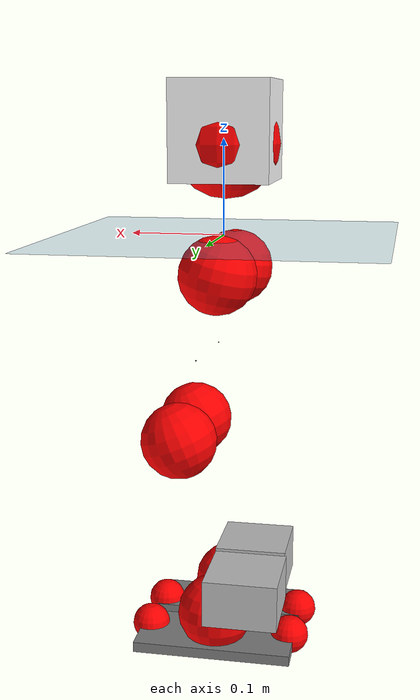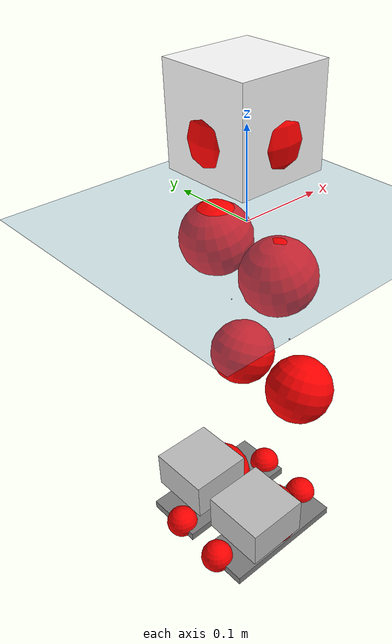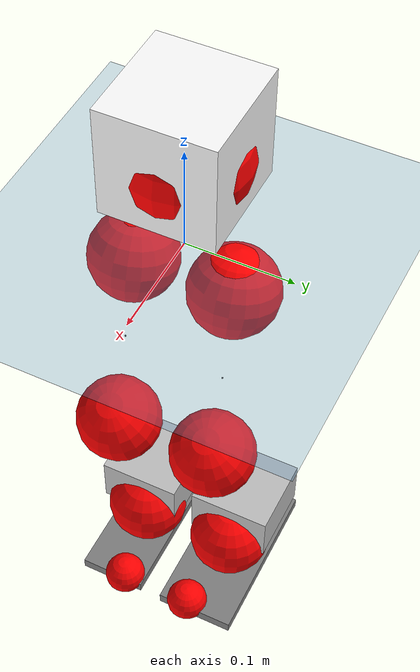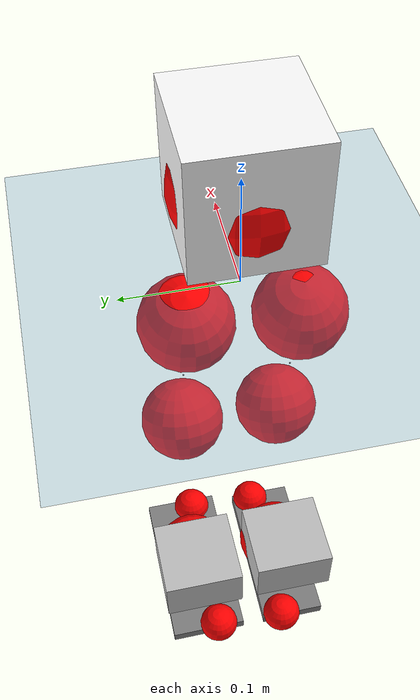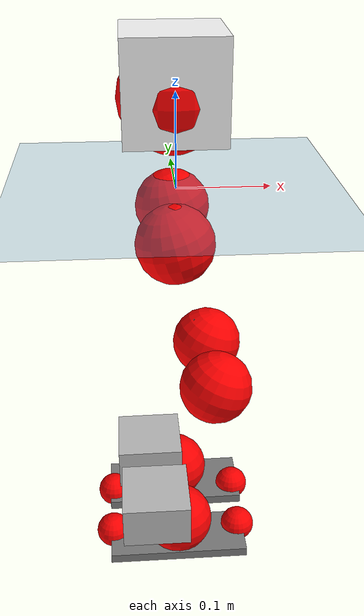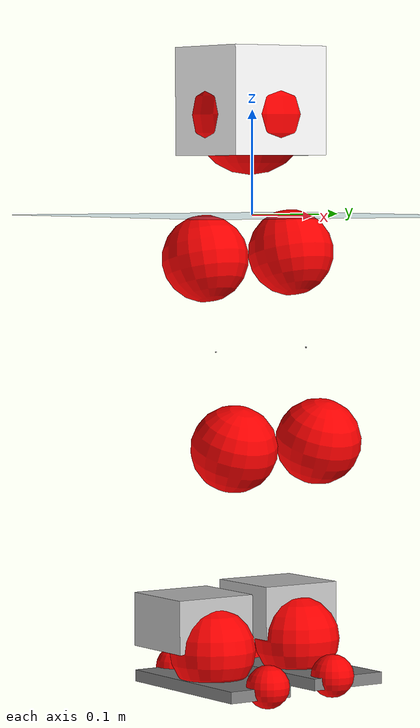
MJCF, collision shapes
<mujoco model="pi_12dof_release_v1">
  <compiler angle="radian" assetdir="assets" balanceinertia="true" inertiafromgeom="false"/>

  <option timestep="0.005" density="1.2" viscosity="2e-05"/>

  <size nkey="1"/>

  <visual>
    <quality shadowsize="8192"/>
    <map shadowclip="0.5"/>
  </visual>

  <default>
    <default class="/">
      <joint armature="0.01" damping="0.01" frictionloss="0.01"/>
      <geom contype="0" conaffinity="0" group="1" solref="-1000 -80"/>
      <site size="0.01 0.005 0.005" group="5"/>
      <general forcelimited="true" biastype="affine" gainprm="20" biasprm="0 -20 -0.5"/>
      <default class="foot">
        <geom size="0.0845 0.036 0.005" type="box" condim="6" group="4" priority="1" friction="0.9 0.2 0.2" solimp="0.015 1 0.005"/>
      </default>
      <default class="reward_collision_sphere">
        <geom group="5" rgba="1 0 0 1"/>
      </default>
    </default>
  </default>

  <asset>
    <texture type="skybox" colorspace="auto" name="//unnamed_texture_0" builtin="gradient" rgb1="0.95 0.95 0.95" rgb2="0.95 0.95 0.95" width="100" height="600"/>
    <texture type="2d" colorspace="auto" name="texplane" builtin="checker" rgb1="0.345 0.575 0.748" rgb2="0.345 0.575 0.748" markrgb="1 1 1" width="512" height="512"/>
    <material name="MatPlane" class="/" texture="texplane" texuniform="true" texrepeat="2 2" specular="0.9"/>
    <mesh name="baselink_1" class="/" file="baselink_1.STL"/>
    <mesh name="r_hip_pitch_link" class="/" file="r_hip_pitch_link.STL"/>
    <mesh name="r_hip_roll_link" class="/" file="r_hip_roll_link.STL"/>
    <mesh name="r_thigh_link" class="/" file="r_thigh_link.STL"/>
    <mesh name="r_calf_link" class="/" file="r_calf_link.STL"/>
    <mesh name="r_ankle_pitch_link" class="/" file="r_ankle_pitch_link.STL"/>
    <mesh name="r_ankle_roll_link" class="/" file="r_ankle_roll_link.STL"/>
    <mesh name="l_hip_pitch_link" class="/" file="l_hip_pitch_link.STL"/>
    <mesh name="l_hip_roll_link" class="/" file="l_hip_roll_link.STL"/>
    <mesh name="l_thigh_link" class="/" file="l_thigh_link.STL"/>
    <mesh name="l_calf_link" class="/" file="l_calf_link.STL"/>
    <mesh name="l_ankle_pitch_link" class="/" file="l_ankle_pitch_link.STL"/>
    <mesh name="l_ankle_roll_link" class="/" file="l_ankle_roll_link.STL"/>
  </asset>

  <worldbody>
    <geom name="floor" class="/" size="100 100 0.125" type="plane" group="0" material="MatPlane"/>
    <light name="toplight_shadow" class="/" pos="0 0 5" dir="0.0990148 0.0990148 -0.990148" type="directional" ambient="0.04 0.04 0.04" diffuse="0.55 0.55 0.55" specular="0.12 0.12 0.12"/>
    <light name="toplight_fill" class="/" pos="0 0 5" dir="0.0990148 0.0990148 -0.990148" type="directional" castshadow="false" ambient="0.04 0.04 0.04" diffuse="0.3 0.3 0.3" specular="0.08 0.08 0.08"/>
    <body name="trunk" pos="-0.00257062 -5.41583e-05 0.00260857" quat="0.999999 0.00065855 -0.000732836 0.000583391">
      <inertial pos="0.00672232 0.00115542 0.0510601" quat="0.697999 0.00172519 0.0176583 0.715879" mass="2.32686" diaginertia="0.0213863 0.000791067 0.0173582"/>
      <joint name="//unnamed_joint_0" type="free"/>
      <geom name="//unnamed_geom_1" class="/" type="mesh" density="0" rgba="1 1 1 1" mesh="baselink_1"/>
      <geom name="//unnamed_geom_2" class="/" size="0.0517451 0.0517451 0.0517451" pos="0 0 0.105773" type="box" rgba="1 1 1 1"/>
      <geom name="//unnamed_geom_3" class="reward_collision_sphere" size="0.0569196" pos="0 0 0.092551"/>
      <site name="imu" class="/" pos="-0.0108926 -0.000180972 0.0106624" size="0.010349"/>
      <camera name="track" class="/" pos="0 -1.22573 0" quat="0.707107 0.707107 0 0" mode="trackcom"/>
      <camera name="ego_camera" class="/" pos="0.0877259 0 0.237988" quat="-0.5 -0.5 0.5 0.5"/>
      <body name="r_hip_pitch_link" pos="0.000150855 -0.0135574 -0.0450579" quat="0.992211 8.91744e-05 -0.124572 0.000109204">
        <inertial pos="0.00147159 -0.034397 7.10767e-05" quat="-0.0176801 0.70561 -0.0299611 0.707746" mass="0.440429" diaginertia="0.000246381 8.9445e-06 0.000352843"/>
        <joint name="r_hip_pitch_joint" class="/" pos="0 0 0" axis="-0.0017139 -0.999998 0.000882557" range="-1.72776 1.30401" armature="0.0108846" damping="0.0138375" frictionloss="0.00910704"/>
        <geom name="//unnamed_geom_4" class="/" type="mesh" density="0" rgba="0.75294 0.75294 0.75294 1" mesh="r_hip_pitch_link"/>
        <geom name="//unnamed_geom_5" class="/" size="0.000517451 0.000517451 0.000517451" type="box" rgba="0.75294 0.75294 0.75294 1"/>
        <body name="r_hip_roll_link" pos="-0.00151291 -0.0373787 0.00188747" quat="1 0.000790802 -1.58621e-05 0.000370073">
          <inertial pos="-0.000384656 -0.000180807 -0.0793506" quat="0.705805 -0.0797642 -0.0828131 0.699013" mass="0.423536" diaginertia="0.00072107 2.48023e-05 0.000531138"/>
          <joint name="r_hip_roll_joint" class="/" pos="0 0 0" axis="-0.999999 -0.0015671 -4.00438e-05" range="-0.0910623 0.492486" armature="0.00979598" damping="0.0216721" frictionloss="0.00903178"/>
          <geom name="//unnamed_geom_6" class="/" type="mesh" density="0" rgba="0.75294 0.75294 0.75294 1" mesh="r_hip_roll_link"/>
          <geom name="//unnamed_geom_7" class="/" size="0.000517451 0.000517451 0.000517451" type="box" rgba="0.75294 0.75294 0.75294 1"/>
          <geom name="//unnamed_geom_8" class="reward_collision_sphere" size="0.041396"/>
          <body name="r_thigh_link" pos="-0.00274643 -0.00139107 -0.090091" quat="0.999999 9.06471e-05 0.000196284 -0.00125275">
            <inertial pos="-0.000112164 0.0038165 -0.0650942" quat="0.735051 0.678007 -0.00116726 -0.00228881" mass="0.120576" diaginertia="0.000269029 8.06726e-06 0.000234632"/>
            <joint name="r_thigh_joint" class="/" pos="0 0 0" axis="-0.00314286 -0.00318977 -0.99999" stiffness="0.00274186" range="-0.310848 0.534333" armature="0.00901342" damping="0" frictionloss="0.0113865"/>
            <geom name="//unnamed_geom_9" class="/" type="mesh" density="0" rgba="0.75294 0.75294 0.75294 1" mesh="r_thigh_link"/>
            <geom name="//unnamed_geom_10" class="/" size="0.000517451 0.000517451 0.000517451" type="box" rgba="0.75294 0.75294 0.75294 1"/>
            <body name="r_calf_link" pos="0.00260442 0.00335539 -0.093929" quat="0.947564 5.4033e-05 0.319566 -0.000217048">
              <inertial pos="-0.00159443 0.00339728 -0.0932644" quat="0.999842 -0.0173534 0.00371512 -0.00109921" mass="0.917817" diaginertia="0.00793018 0.000302061 0.000721481"/>
              <joint name="r_calf_joint" class="/" pos="0 0 0" axis="0.000366713 -0.999999 0.00113877" stiffness="0.0088403" range="-1.65497 0.696539" armature="0.00916279" damping="0" frictionloss="0.010644"/>
              <geom name="//unnamed_geom_11" class="/" type="mesh" density="0" rgba="0.75294 0.75294 0.75294 1" mesh="r_calf_link"/>
              <geom name="//unnamed_geom_12" class="/" size="0.000517451 0.000517451 0.000517451" type="box" rgba="0.75294 0.75294 0.75294 1"/>
              <geom name="//unnamed_geom_13" class="reward_collision_sphere" size="0.041396"/>
              <body name="r_ankle_pitch_link" pos="0.000862203 -0.000684023 -0.184266" quat="0.980059 0.000243841 -0.198706 -0.000343297">
                <inertial pos="0.00332113 -3.037e-05 -0.00178758" quat="0.00908555 0.708517 -0.000551299 0.705635" mass="0.189148" diaginertia="0.00064566 1.88273e-05 0.000457695"/>
                <joint name="r_ankle_pitch_joint" class="/" pos="0 0 0" axis="0.00221363 -0.999993 -0.00309285" range="-1.32541 0.519637" armature="0.0109737" damping="0.0113351" frictionloss="0.00986068"/>
                <geom name="//unnamed_geom_14" class="/" type="mesh" density="0" rgba="0.75294 0.75294 0.75294 1" mesh="r_ankle_pitch_link"/>
                <geom name="//unnamed_geom_15" class="/" size="0.0403611 0.041396 0.0258725" type="box" rgba="0.75294 0.75294 0.75294 1"/>
                <body name="r_ankle_roll_link" pos="0.0866715 0.00342723 0.00012383" quat="1 -0.000455017 -0.000572732 0.000172726">
                  <inertial pos="-0.0279178 0.00019692 -0.0179936" quat="0.569608 0.421311 0.437741 0.553558" mass="0.584253" diaginertia="0.00254676 8.64495e-05 0.00113303"/>
                  <joint name="r_ankle_roll_joint" class="/" pos="0 0 0" axis="-0.999956 -0.00936567 -0.000506763" range="-0.13249 0.132654" armature="0.00904778" damping="0.00177025" frictionloss="0.0116883"/>
                  <geom name="//unnamed_geom_16" class="/" type="mesh" density="0" rgba="0.75294 0.75294 0.75294 1" mesh="r_ankle_roll_link"/>
                  <geom name="//unnamed_geom_17" class="/" type="mesh" rgba="0.75294 0.75294 0.75294 1" mesh="r_ankle_roll_link"/>
                  <geom name="right_foot" class="foot" size="0.0836067 0.0336783 0.00559407" pos="-0.0596536 0 -0.0581749"/>
                  <geom name="//unnamed_geom_19" class="reward_collision_sphere" size="0.041396" pos="-0.0584839 0 -0.0264432"/>
                  <geom name="//unnamed_geom_20" class="reward_collision_sphere" size="0.020698" pos="0.0175452 0.0122573 -0.0528863"/>
                  <geom name="//unnamed_geom_21" class="reward_collision_sphere" size="0.020698" pos="-0.140361 0.0122573 -0.0528863"/>
                  <site name="right_foot" class="foot" pos="-0.0596536 0 -0.0581749" size="0.010349"/>
                </body>
              </body>
            </body>
          </body>
        </body>
      </body>
      <body name="l_hip_pitch_link" pos="-0.00170989 0.0138547 -0.0417422" quat="0.992186 -7.79788e-05 -0.124771 -6.27037e-05">
        <inertial pos="0.00142639 0.0338003 0.00254841" quat="-0.0401516 0.705865 0.0288663 0.706618" mass="0.418004" diaginertia="0.000258144 8.53843e-06 0.000385286"/>
        <joint name="l_hip_pitch_joint" class="/" pos="0 0 0" axis="0.00213014 0.999989 -0.00415299" range="-1.20077 1.74695" armature="0.0101953" damping="0.0167399" frictionloss="0.00989656"/>
        <geom name="//unnamed_geom_22" class="/" type="mesh" density="0" rgba="0.75294 0.75294 0.75294 1" mesh="l_hip_pitch_link"/>
        <geom name="//unnamed_geom_23" class="/" size="0.000517451 0.000517451 0.000517451" type="box" rgba="0.75294 0.75294 0.75294 1"/>
        <body name="l_hip_roll_link" pos="0.00329545 0.0321088 0.0018657" quat="0.999999 -0.000743168 -0.000505136 0.00077712">
          <inertial pos="0.00151945 0.00268334 -0.0776728" quat="0.700997 -0.0718861 -0.0797488 0.705036" mass="0.414416" diaginertia="0.000754936 2.40072e-05 0.000531968"/>
          <joint name="l_hip_roll_joint" class="/" pos="0 0 0" axis="-0.999852 0.00674364 -0.0157999" stiffness="0.000537711" range="-0.449483 0.0623401" armature="0.0089765" damping="0.0073949" frictionloss="0.00950732"/>
          <geom name="//unnamed_geom_24" class="/" type="mesh" density="0" rgba="0.75294 0.75294 0.75294 1" mesh="l_hip_roll_link"/>
          <geom name="//unnamed_geom_25" class="/" size="0.000517451 0.000517451 0.000517451" type="box" rgba="0.75294 0.75294 0.75294 1"/>
          <geom name="//unnamed_geom_26" class="reward_collision_sphere" size="0.041396"/>
          <body name="l_thigh_link" pos="-0.000504609 0.00213026 -0.0936568" quat="1 0.00028859 -0.000376285 0.000158568">
            <inertial pos="0.00208601 -0.00221617 -0.0657478" quat="0.671867 0.740663 -0.00119203 0.00345536" mass="0.118053" diaginertia="0.000257275 7.66125e-06 0.000229645"/>
            <joint name="l_thigh_joint" class="/" pos="0 0 0" axis="4.36086e-05 0.000304541 -1" stiffness="0.00480052" range="-0.551432 0.270643" armature="0.0116005" damping="0.00044596" frictionloss="0.00988801"/>
            <geom name="//unnamed_geom_27" class="/" type="mesh" density="0" rgba="0.75294 0.75294 0.75294 1" mesh="l_thigh_link"/>
            <geom name="//unnamed_geom_28" class="/" size="0.000517451 0.000517451 0.000517451" type="box" rgba="0.75294 0.75294 0.75294 1"/>
            <body name="l_calf_link" pos="-0.00409096 0.0012157 -0.0910558" quat="0.947888 3.75134e-07 0.318603 0.000260236">
              <inertial pos="-0.00123019 0.00353438 -0.0894744" quat="0.999807 0.000494228 -0.0194648 -0.00267866" mass="0.933945" diaginertia="0.00806391 0.000312537 0.000733479"/>
              <joint name="l_calf_joint" class="/" pos="0 0 0" axis="-0.00214773 0.999997 -0.00114985" stiffness="0.0125369" range="-0.635527 1.70496" armature="0.00976386" damping="0.0086118" frictionloss="0.0116772"/>
              <geom name="//unnamed_geom_29" class="/" type="mesh" density="0" rgba="0.75294 0.75294 0.75294 1" mesh="l_calf_link"/>
              <geom name="//unnamed_geom_30" class="/" size="0.000517451 0.000517451 0.000517451" type="box" rgba="0.75294 0.75294 0.75294 1"/>
              <geom name="//unnamed_geom_31" class="reward_collision_sphere" size="0.041396"/>
              <body name="l_ankle_pitch_link" pos="-0.0032092 0.00370641 -0.183194" quat="0.979987 7.23837e-05 -0.199062 0.000108759">
                <inertial pos="0.00509288 0.00098719 0.00215005" quat="-0.00211932 0.707161 0.0023086 0.707045" mass="0.191813" diaginertia="0.00066322 1.87332e-05 0.000467952"/>
                <joint name="l_ankle_pitch_joint" class="/" pos="0 0 0" axis="-0.00320102 0.999995 -0.000233001" stiffness="0.00119199" range="-0.545577 1.28285" armature="0.00986142" damping="0.0112345" frictionloss="0.0115933"/>
                <geom name="//unnamed_geom_32" class="/" type="mesh" density="0" rgba="0.75294 0.75294 0.75294 1" mesh="l_ankle_pitch_link"/>
                <geom name="//unnamed_geom_33" class="/" size="0.0403611 0.041396 0.0258725" type="box" rgba="0.75294 0.75294 0.75294 1"/>
                <body name="l_ankle_roll_link" pos="0.0913823 -0.000267731 -0.00113658" quat="0.999999 0.000792569 -0.000120915 0.000809648">
                  <inertial pos="-0.0288274 -0.00265899 -0.016961" quat="0.560027 0.430596 0.434025 0.559088" mass="0.561974" diaginertia="0.00243551 8.9034e-05 0.00111476"/>
                  <joint name="l_ankle_roll_joint" class="/" pos="0 0 0" axis="-0.999993 -0.00248746 0.00274348" stiffness="0.0110366" range="-0.173714 0.138573" armature="0.0101526" damping="0" frictionloss="0.0115257"/>
                  <geom name="//unnamed_geom_34" class="/" type="mesh" density="0" rgba="0.75294 0.75294 0.75294 1" mesh="l_ankle_roll_link"/>
                  <geom name="//unnamed_geom_35" class="/" type="mesh" rgba="0.75294 0.75294 0.75294 1" mesh="l_ankle_roll_link"/>
                  <geom name="left_foot" class="foot" size="0.0858716 0.0394386 0.00564627" pos="-0.0596536 0 -0.0581749"/>
                  <geom name="//unnamed_geom_37" class="reward_collision_sphere" size="0.041396" pos="-0.0584839 0 -0.0264432"/>
                  <geom name="//unnamed_geom_38" class="reward_collision_sphere" size="0.020698" pos="0.0175452 -0.0122573 -0.0528863"/>
                  <geom name="//unnamed_geom_39" class="reward_collision_sphere" size="0.020698" pos="-0.140361 -0.0122573 -0.0528863"/>
                  <site name="left_foot" class="foot" pos="-0.0596536 0 -0.0581749" size="0.010349"/>
                </body>
              </body>
            </body>
          </body>
        </body>
      </body>
    </body>
  </worldbody>

  <contact>
    <pair class="/" geom1="floor" geom2="right_foot" name="//unnamed_contact_1"/>
    <pair class="/" geom1="floor" geom2="left_foot" name="//unnamed_contact_0"/>
  </contact>

  <actuator>
    <general name="r_hip_pitch_joint" class="/" joint="r_hip_pitch_joint" forcerange="-21.4479 21.4479" gainprm="22.834" biasprm="0 -22.834 -0.512109"/>
    <general name="r_hip_roll_joint" class="/" joint="r_hip_roll_joint" forcerange="-21.6911 21.6911" gainprm="22.834" biasprm="0 -22.834 -0.512109"/>
    <general name="r_thigh_joint" class="/" joint="r_thigh_joint" forcerange="-22.2387 22.2387" gainprm="22.834" biasprm="0 -22.834 -0.512109"/>
    <general name="r_calf_joint" class="/" joint="r_calf_joint" forcerange="-20.1202 20.1202" gainprm="22.834" biasprm="0 -22.834 -0.512109"/>
    <general name="r_ankle_pitch_joint" class="/" joint="r_ankle_pitch_joint" forcerange="-23.2531 23.2531" gainprm="22.834" biasprm="0 -22.834 -0.512109"/>
    <general name="r_ankle_roll_joint" class="/" joint="r_ankle_roll_joint" forcerange="-20.7106 20.7106" gainprm="22.834" biasprm="0 -22.834 -0.512109"/>
    <general name="l_hip_pitch_joint" class="/" joint="l_hip_pitch_joint" forcerange="-21.8599 21.8599" gainprm="22.834" biasprm="0 -22.834 -0.512109"/>
    <general name="l_hip_roll_joint" class="/" joint="l_hip_roll_joint" forcerange="-23.902 23.902" gainprm="22.834" biasprm="0 -22.834 -0.512109"/>
    <general name="l_thigh_joint" class="/" joint="l_thigh_joint" forcerange="-19.5642 19.5642" gainprm="22.834" biasprm="0 -22.834 -0.512109"/>
    <general name="l_calf_joint" class="/" joint="l_calf_joint" forcerange="-21.1216 21.1216" gainprm="22.834" biasprm="0 -22.834 -0.512109"/>
    <general name="l_ankle_pitch_joint" class="/" joint="l_ankle_pitch_joint" forcerange="-22.1659 22.1659" gainprm="22.834" biasprm="0 -22.834 -0.512109"/>
    <general name="l_ankle_roll_joint" class="/" joint="l_ankle_roll_joint" forcerange="-19.771 19.771" gainprm="22.834" biasprm="0 -22.834 -0.512109"/>
  </actuator>

  <sensor>
    <gyro site="imu" name="imu_angular_velocity"/>
    <velocimeter site="imu" name="imu_linear_velocity"/>
    <framelinvel objtype="site" objname="left_foot" name="left_foot_global_linear_velocity"/>
    <framelinvel objtype="site" objname="right_foot" name="right_foot_global_linear_velocity"/>
  </sensor>

  <keyframe>
    <key name="home" qpos="0 0 0.291 1 0 0 0 0.4 0 0 -0.8 0.4 0 -0.4 0 0 0.8 -0.4 0"/>
  </keyframe>
</mujoco>
